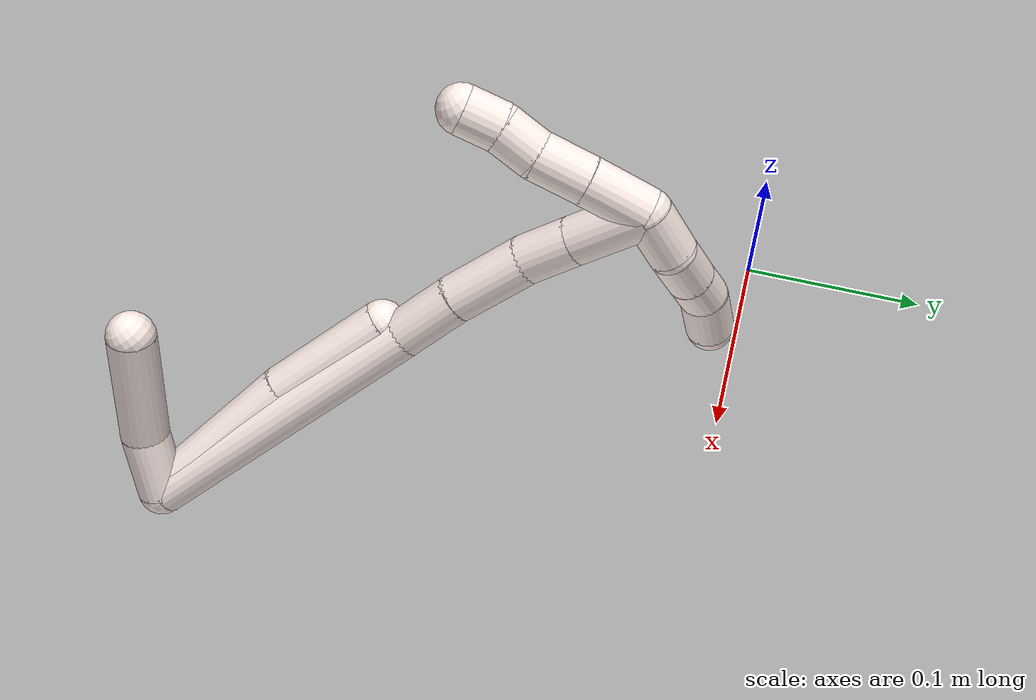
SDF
<sdf version="1.7">
 <world name="default">
  <model name="11">
   <static>0</static>
   <link name="11">
    <collision name="collision-cylinder-e_1_2_8">
     <pose>-0.02096 0.036794 0.006139 -1.40548 -0.511923 0.436262</pose>
     <geometry><cylinder><radius>0.0125</radius><length>0.085576</length></cylinder></geometry>
     <surface>
      <friction><ode><mu>1.16</mu><mu2>1.16</mu2><slip1>0</slip1><slip2>0</slip2></ode></friction>
      <contact><ode><kp>1e+06</kp><kd>1</kd><max_vel>0</max_vel><min_depth>0.001</min_depth></ode></contact>
     </surface>
    </collision>
    <visual name="visual-cylinder-e_1_2_8">
     <pose>-0.02096 0.036794 0.006139 -1.40548 -0.511923 0.436262</pose>
     <geometry><cylinder><radius>0.0125</radius><length>0.085576</length></cylinder></geometry>
     <material><ambient>1 0.933333 0.909804 1</ambient></material>
    </visual>
    <collision name="collision-cylinder-e_2_8_6">
     <pose>-0.055181 0.102883 0.014168 -1.50632 -0.424317 0.398523</pose>
     <geometry><cylinder><radius>0.0125</radius><length>0.064424</length></cylinder></geometry>
     <surface>
      <friction><ode><mu>1.16</mu><mu2>1.16</mu2><slip1>0</slip1><slip2>0</slip2></ode></friction>
      <contact><ode><kp>1e+06</kp><kd>1</kd><max_vel>0</max_vel><min_depth>0.001</min_depth></ode></contact>
     </surface>
    </collision>
    <visual name="visual-cylinder-e_2_8_6">
     <pose>-0.055181 0.102883 0.014168 -1.50632 -0.424317 0.398523</pose>
     <geometry><cylinder><radius>0.0125</radius><length>0.064424</length></cylinder></geometry>
     <material><ambient>1 0.933333 0.909804 1</ambient></material>
    </visual>
    <collision name="collision-cylinder-e_1_2_9">
     <pose>-0.003762 0.005771 0.016237 -0.341509 -0.214938 0.037202</pose>
     <geometry><cylinder><radius>0.0125</radius><length>0.035275</length></cylinder></geometry>
     <surface>
      <friction><ode><mu>1.16</mu><mu2>1.16</mu2><slip1>0</slip1><slip2>0</slip2></ode></friction>
      <contact><ode><kp>1e+06</kp><kd>1</kd><max_vel>0</max_vel><min_depth>0.001</min_depth></ode></contact>
     </surface>
    </collision>
    <visual name="visual-cylinder-e_1_2_9">
     <pose>-0.003762 0.005771 0.016237 -0.341509 -0.214938 0.037202</pose>
     <geometry><cylinder><radius>0.0125</radius><length>0.035275</length></cylinder></geometry>
     <material><ambient>1 0.933333 0.909804 1</ambient></material>
    </visual>
    <collision name="collision-cylinder-e_2_9_5">
     <pose>-0.010501 0.029324 0.059348 -0.584539 -0.092136 0.02774</pose>
     <geometry><cylinder><radius>0.0125</radius><length>0.064725</length></cylinder></geometry>
     <surface>
      <friction><ode><mu>1.16</mu><mu2>1.16</mu2><slip1>0</slip1><slip2>0</slip2></ode></friction>
      <contact><ode><kp>1e+06</kp><kd>1</kd><max_vel>0</max_vel><min_depth>0.001</min_depth></ode></contact>
     </surface>
    </collision>
    <visual name="visual-cylinder-e_2_9_5">
     <pose>-0.010501 0.029324 0.059348 -0.584539 -0.092136 0.02774</pose>
     <geometry><cylinder><radius>0.0125</radius><length>0.064725</length></cylinder></geometry>
     <material><ambient>1 0.933333 0.909804 1</ambient></material>
    </visual>
    <collision name="collision-cylinder-e_1_2_10">
     <pose>-0.033341 0.070015 0.003961 -1.51429 -0.443812 0.420147</pose>
     <geometry><cylinder><radius>0.0125</radius><length>0.155298</length></cylinder></geometry>
     <surface>
      <friction><ode><mu>1.16</mu><mu2>1.16</mu2><slip1>0</slip1><slip2>0</slip2></ode></friction>
      <contact><ode><kp>1e+06</kp><kd>1</kd><max_vel>0</max_vel><min_depth>0.001</min_depth></ode></contact>
     </surface>
    </collision>
    <visual name="visual-cylinder-e_1_2_10">
     <pose>-0.033341 0.070015 0.003961 -1.51429 -0.443812 0.420147</pose>
     <geometry><cylinder><radius>0.0125</radius><length>0.155298</length></cylinder></geometry>
     <material><ambient>1 0.933333 0.909804 1</ambient></material>
    </visual>
    <collision name="collision-cylinder-e_2_10_11">
     <pose>-0.07197 0.15655 0.010107 -1.43929 -0.307225 0.269755</pose>
     <geometry><cylinder><radius>0.0125</radius><length>0.034966</length></cylinder></geometry>
     <surface>
      <friction><ode><mu>1.16</mu><mu2>1.16</mu2><slip1>0</slip1><slip2>0</slip2></ode></friction>
      <contact><ode><kp>1e+06</kp><kd>1</kd><max_vel>0</max_vel><min_depth>0.001</min_depth></ode></contact>
     </surface>
    </collision>
    <visual name="visual-cylinder-e_2_10_11">
     <pose>-0.07197 0.15655 0.010107 -1.43929 -0.307225 0.269755</pose>
     <geometry><cylinder><radius>0.0125</radius><length>0.034966</length></cylinder></geometry>
     <material><ambient>1 0.933333 0.909804 1</ambient></material>
    </visual>
    <collision name="collision-cylinder-e_3_11_12">
     <pose>-0.08352 0.192971 0.013221 -1.52414 -0.304598 0.290907</pose>
     <geometry><cylinder><radius>0.0125</radius><length>0.041767</length></cylinder></geometry>
     <surface>
      <friction><ode><mu>1.16</mu><mu2>1.16</mu2><slip1>0</slip1><slip2>0</slip2></ode></friction>
      <contact><ode><kp>1e+06</kp><kd>1</kd><max_vel>0</max_vel><min_depth>0.001</min_depth></ode></contact>
     </surface>
    </collision>
    <visual name="visual-cylinder-e_3_11_12">
     <pose>-0.08352 0.192971 0.013221 -1.52414 -0.304598 0.290907</pose>
     <geometry><cylinder><radius>0.0125</radius><length>0.041767</length></cylinder></geometry>
     <material><ambient>1 0.933333 0.909804 1</ambient></material>
    </visual>
    <collision name="collision-cylinder-e_4_12_13">
     <pose>-0.092022 0.2266 0.013905 -1.58862 -0.161618 0.164512</pose>
     <geometry><cylinder><radius>0.0125</radius><length>0.027824</length></cylinder></geometry>
     <surface>
      <friction><ode><mu>1.16</mu><mu2>1.16</mu2><slip1>0</slip1><slip2>0</slip2></ode></friction>
      <contact><ode><kp>1e+06</kp><kd>1</kd><max_vel>0</max_vel><min_depth>0.001</min_depth></ode></contact>
     </surface>
    </collision>
    <visual name="visual-cylinder-e_4_12_13">
     <pose>-0.092022 0.2266 0.013905 -1.58862 -0.161618 0.164512</pose>
     <geometry><cylinder><radius>0.0125</radius><length>0.027824</length></cylinder></geometry>
     <material><ambient>1 0.933333 0.909804 1</ambient></material>
    </visual>
    <collision name="collision-cylinder-e_5_13_1">
     <pose>-0.097059 0.260202 0.013311 -1.58839 -0.139847 0.142321</pose>
     <geometry><cylinder><radius>0.0125</radius><length>0.040145</length></cylinder></geometry>
     <surface>
      <friction><ode><mu>1.16</mu><mu2>1.16</mu2><slip1>0</slip1><slip2>0</slip2></ode></friction>
      <contact><ode><kp>1e+06</kp><kd>1</kd><max_vel>0</max_vel><min_depth>0.001</min_depth></ode></contact>
     </surface>
    </collision>
    <visual name="visual-cylinder-e_5_13_1">
     <pose>-0.097059 0.260202 0.013311 -1.58839 -0.139847 0.142321</pose>
     <geometry><cylinder><radius>0.0125</radius><length>0.040145</length></cylinder></geometry>
     <material><ambient>1 0.933333 0.909804 1</ambient></material>
    </visual>
    <collision name="collision-cylinder-e_1_1_14">
     <pose>-0.099186 0.271567 0.026666 0.55557 0.041552 0.01185</pose>
     <geometry><cylinder><radius>0.0125</radius><length>0.03229</length></cylinder></geometry>
     <surface>
      <friction><ode><mu>1.16</mu><mu2>1.16</mu2><slip1>0</slip1><slip2>0</slip2></ode></friction>
      <contact><ode><kp>1e+06</kp><kd>1</kd><max_vel>0</max_vel><min_depth>0.001</min_depth></ode></contact>
     </surface>
    </collision>
    <visual name="visual-cylinder-e_1_1_14">
     <pose>-0.099186 0.271567 0.026666 0.55557 0.041552 0.01185</pose>
     <geometry><cylinder><radius>0.0125</radius><length>0.03229</length></cylinder></geometry>
     <material><ambient>1 0.933333 0.909804 1</ambient></material>
    </visual>
    <collision name="collision-cylinder-e_2_14_15">
     <pose>-0.097938 0.255573 0.051556 0.589843 0.042858 0.013021</pose>
     <geometry><cylinder><radius>0.0125</radius><length>0.026943</length></cylinder></geometry>
     <surface>
      <friction><ode><mu>1.16</mu><mu2>1.16</mu2><slip1>0</slip1><slip2>0</slip2></ode></friction>
      <contact><ode><kp>1e+06</kp><kd>1</kd><max_vel>0</max_vel><min_depth>0.001</min_depth></ode></contact>
     </surface>
    </collision>
    <visual name="visual-cylinder-e_2_14_15">
     <pose>-0.097938 0.255573 0.051556 0.589843 0.042858 0.013021</pose>
     <geometry><cylinder><radius>0.0125</radius><length>0.026943</length></cylinder></geometry>
     <material><ambient>1 0.933333 0.909804 1</ambient></material>
    </visual>
    <collision name="collision-cylinder-e_3_15_16">
     <pose>-0.09795 0.243882 0.072161 0.419745 -0.057059 -0.012157</pose>
     <geometry><cylinder><radius>0.0125</radius><length>0.020666</length></cylinder></geometry>
     <surface>
      <friction><ode><mu>1.16</mu><mu2>1.16</mu2><slip1>0</slip1><slip2>0</slip2></ode></friction>
      <contact><ode><kp>1e+06</kp><kd>1</kd><max_vel>0</max_vel><min_depth>0.001</min_depth></ode></contact>
     </surface>
    </collision>
    <visual name="visual-cylinder-e_3_15_16">
     <pose>-0.09795 0.243882 0.072161 0.419745 -0.057059 -0.012157</pose>
     <geometry><cylinder><radius>0.0125</radius><length>0.020666</length></cylinder></geometry>
     <material><ambient>1 0.933333 0.909804 1</ambient></material>
    </visual>
    <collision name="collision-cylinder-e_4_16_4">
     <pose>-0.097549 0.234168 0.089929 0.583442 0.098705 0.029662</pose>
     <geometry><cylinder><radius>0.0125</radius><length>0.020102</length></cylinder></geometry>
     <surface>
      <friction><ode><mu>1.16</mu><mu2>1.16</mu2><slip1>0</slip1><slip2>0</slip2></ode></friction>
      <contact><ode><kp>1e+06</kp><kd>1</kd><max_vel>0</max_vel><min_depth>0.001</min_depth></ode></contact>
     </surface>
    </collision>
    <visual name="visual-cylinder-e_4_16_4">
     <pose>-0.097549 0.234168 0.089929 0.583442 0.098705 0.029662</pose>
     <geometry><cylinder><radius>0.0125</radius><length>0.020102</length></cylinder></geometry>
     <material><ambient>1 0.933333 0.909804 1</ambient></material>
    </visual>
    <collision name="collision-cylinder-e_1_1_17">
     <pose>-0.101191 0.279056 -0.000608 3.06663 -0.097776 -1.83373</pose>
     <geometry><cylinder><radius>0.0125</radius><length>0.027345</length></cylinder></geometry>
     <surface>
      <friction><ode><mu>1.16</mu><mu2>1.16</mu2><slip1>0</slip1><slip2>0</slip2></ode></friction>
      <contact><ode><kp>1e+06</kp><kd>1</kd><max_vel>0</max_vel><min_depth>0.001</min_depth></ode></contact>
     </surface>
    </collision>
    <visual name="visual-cylinder-e_1_1_17">
     <pose>-0.101191 0.279056 -0.000608 3.06663 -0.097776 -1.83373</pose>
     <geometry><cylinder><radius>0.0125</radius><length>0.027345</length></cylinder></geometry>
     <material><ambient>1 0.933333 0.909804 1</ambient></material>
    </visual>
    <collision name="collision-cylinder-e_2_17_18">
     <pose>-0.10708 0.275456 -0.025549 2.91846 -0.372265 -2.06824</pose>
     <geometry><cylinder><radius>0.0125</radius><length>0.025038</length></cylinder></geometry>
     <surface>
      <friction><ode><mu>1.16</mu><mu2>1.16</mu2><slip1>0</slip1><slip2>0</slip2></ode></friction>
      <contact><ode><kp>1e+06</kp><kd>1</kd><max_vel>0</max_vel><min_depth>0.001</min_depth></ode></contact>
     </surface>
    </collision>
    <visual name="visual-cylinder-e_2_17_18">
     <pose>-0.10708 0.275456 -0.025549 2.91846 -0.372265 -2.06824</pose>
     <geometry><cylinder><radius>0.0125</radius><length>0.025038</length></cylinder></geometry>
     <material><ambient>1 0.933333 0.909804 1</ambient></material>
    </visual>
    <collision name="collision-cylinder-e_3_18_19">
     <pose>-0.115586 0.270822 -0.046077 2.92096 -0.398731 -2.13865</pose>
     <geometry><cylinder><radius>0.0125</radius><length>0.020363</length></cylinder></geometry>
     <surface>
      <friction><ode><mu>1.16</mu><mu2>1.16</mu2><slip1>0</slip1><slip2>0</slip2></ode></friction>
      <contact><ode><kp>1e+06</kp><kd>1</kd><max_vel>0</max_vel><min_depth>0.001</min_depth></ode></contact>
     </surface>
    </collision>
    <visual name="visual-cylinder-e_3_18_19">
     <pose>-0.115586 0.270822 -0.046077 2.92096 -0.398731 -2.13865</pose>
     <geometry><cylinder><radius>0.0125</radius><length>0.020363</length></cylinder></geometry>
     <material><ambient>1 0.933333 0.909804 1</ambient></material>
    </visual>
    <collision name="collision-cylinder-e_4_19_3">
     <pose>-0.122571 0.263228 -0.067307 2.71135 -0.224361 -0.952049</pose>
     <geometry><cylinder><radius>0.0125</radius><length>0.027253</length></cylinder></geometry>
     <surface>
      <friction><ode><mu>1.16</mu><mu2>1.16</mu2><slip1>0</slip1><slip2>0</slip2></ode></friction>
      <contact><ode><kp>1e+06</kp><kd>1</kd><max_vel>0</max_vel><min_depth>0.001</min_depth></ode></contact>
     </surface>
    </collision>
    <visual name="visual-cylinder-e_4_19_3">
     <pose>-0.122571 0.263228 -0.067307 2.71135 -0.224361 -0.952049</pose>
     <geometry><cylinder><radius>0.0125</radius><length>0.027253</length></cylinder></geometry>
     <material><ambient>1 0.933333 0.909804 1</ambient></material>
    </visual>
    <collision name="collision-sphere-3">
     <pose>-0.125603 0.257687 -0.079382 0 -0 0</pose>
     <geometry><sphere><radius>0.0125</radius></sphere></geometry>
     <surface>
      <friction><ode><mu>1.16</mu><mu2>1.16</mu2><slip1>0</slip1><slip2>0</slip2></ode></friction>
      <contact><ode><kp>1e+06</kp><kd>1</kd><max_vel>0</max_vel><min_depth>0.001</min_depth></ode></contact>
     </surface>
    </collision>
    <visual name="visual-sphere-3">
     <pose>-0.125603 0.257687 -0.079382 0 -0 0</pose>
     <geometry><sphere><radius>0.0125</radius></sphere></geometry>
     <material><ambient>1 0.933333 0.909804 1</ambient></material>
    </visual>
    <collision name="collision-sphere-19">
     <pose>-0.119539 0.268769 -0.055233 0 -0 0</pose>
     <geometry><sphere><radius>0.0125</radius></sphere></geometry>
     <surface>
      <friction><ode><mu>1.16</mu><mu2>1.16</mu2><slip1>0</slip1><slip2>0</slip2></ode></friction>
      <contact><ode><kp>1e+06</kp><kd>1</kd><max_vel>0</max_vel><min_depth>0.001</min_depth></ode></contact>
     </surface>
    </collision>
    <visual name="visual-sphere-19">
     <pose>-0.119539 0.268769 -0.055233 0 -0 0</pose>
     <geometry><sphere><radius>0.0125</radius></sphere></geometry>
     <material><ambient>1 0.933333 0.909804 1</ambient></material>
    </visual>
    <collision name="collision-sphere-10">
     <pose>-0.066683 0.140029 0.007921 0 -0 0</pose>
     <geometry><sphere><radius>0.0125</radius></sphere></geometry>
     <surface>
      <friction><ode><mu>1.16</mu><mu2>1.16</mu2><slip1>0</slip1><slip2>0</slip2></ode></friction>
      <contact><ode><kp>1e+06</kp><kd>1</kd><max_vel>0</max_vel><min_depth>0.001</min_depth></ode></contact>
     </surface>
    </collision>
    <visual name="visual-sphere-10">
     <pose>-0.066683 0.140029 0.007921 0 -0 0</pose>
     <geometry><sphere><radius>0.0125</radius></sphere></geometry>
     <material><ambient>1 0.933333 0.909804 1</ambient></material>
    </visual>
    <collision name="collision-sphere-5">
     <pose>-0.013479 0.047107 0.086223 0 -0 0</pose>
     <geometry><sphere><radius>0.0125</radius></sphere></geometry>
     <surface>
      <friction><ode><mu>1.16</mu><mu2>1.16</mu2><slip1>0</slip1><slip2>0</slip2></ode></friction>
      <contact><ode><kp>1e+06</kp><kd>1</kd><max_vel>0</max_vel><min_depth>0.001</min_depth></ode></contact>
     </surface>
    </collision>
    <visual name="visual-sphere-5">
     <pose>-0.013479 0.047107 0.086223 0 -0 0</pose>
     <geometry><sphere><radius>0.0125</radius></sphere></geometry>
     <material><ambient>1 0.933333 0.909804 1</ambient></material>
    </visual>
    <collision name="collision-sphere-6">
     <pose>-0.068443 0.132177 0.01606 0 -0 0</pose>
     <geometry><sphere><radius>0.0125</radius></sphere></geometry>
     <surface>
      <friction><ode><mu>1.16</mu><mu2>1.16</mu2><slip1>0</slip1><slip2>0</slip2></ode></friction>
      <contact><ode><kp>1e+06</kp><kd>1</kd><max_vel>0</max_vel><min_depth>0.001</min_depth></ode></contact>
     </surface>
    </collision>
    <visual name="visual-sphere-6">
     <pose>-0.068443 0.132177 0.01606 0 -0 0</pose>
     <geometry><sphere><radius>0.0125</radius></sphere></geometry>
     <material><ambient>1 0.933333 0.909804 1</ambient></material>
    </visual>
    <collision name="collision-sphere-9">
     <pose>-0.007524 0.011542 0.032473 0 -0 0</pose>
     <geometry><sphere><radius>0.0125</radius></sphere></geometry>
     <surface>
      <friction><ode><mu>1.16</mu><mu2>1.16</mu2><slip1>0</slip1><slip2>0</slip2></ode></friction>
      <contact><ode><kp>1e+06</kp><kd>1</kd><max_vel>0</max_vel><min_depth>0.001</min_depth></ode></contact>
     </surface>
    </collision>
    <visual name="visual-sphere-9">
     <pose>-0.007524 0.011542 0.032473 0 -0 0</pose>
     <geometry><sphere><radius>0.0125</radius></sphere></geometry>
     <material><ambient>1 0.933333 0.909804 1</ambient></material>
    </visual>
    <collision name="collision-sphere-2">
     <geometry><sphere><radius>0.0125</radius></sphere></geometry>
     <surface>
      <friction><ode><mu>1.16</mu><mu2>1.16</mu2><slip1>0</slip1><slip2>0</slip2></ode></friction>
      <contact><ode><kp>1e+06</kp><kd>1</kd><max_vel>0</max_vel><min_depth>0.001</min_depth></ode></contact>
     </surface>
    </collision>
    <visual name="visual-sphere-2">
     <geometry><sphere><radius>0.0125</radius></sphere></geometry>
     <material><ambient>1 0.933333 0.909804 1</ambient></material>
    </visual>
    <collision name="collision-sphere-8">
     <pose>-0.04192 0.073588 0.012277 0 -0 0</pose>
     <geometry><sphere><radius>0.0125</radius></sphere></geometry>
     <surface>
      <friction><ode><mu>1.16</mu><mu2>1.16</mu2><slip1>0</slip1><slip2>0</slip2></ode></friction>
      <contact><ode><kp>1e+06</kp><kd>1</kd><max_vel>0</max_vel><min_depth>0.001</min_depth></ode></contact>
     </surface>
    </collision>
    <visual name="visual-sphere-8">
     <pose>-0.04192 0.073588 0.012277 0 -0 0</pose>
     <geometry><sphere><radius>0.0125</radius></sphere></geometry>
     <material><ambient>1 0.933333 0.909804 1</ambient></material>
    </visual>
    <collision name="collision-sphere-11">
     <pose>-0.077257 0.17307 0.012292 0 -0 0</pose>
     <geometry><sphere><radius>0.0125</radius></sphere></geometry>
     <surface>
      <friction><ode><mu>1.16</mu><mu2>1.16</mu2><slip1>0</slip1><slip2>0</slip2></ode></friction>
      <contact><ode><kp>1e+06</kp><kd>1</kd><max_vel>0</max_vel><min_depth>0.001</min_depth></ode></contact>
     </surface>
    </collision>
    <visual name="visual-sphere-11">
     <pose>-0.077257 0.17307 0.012292 0 -0 0</pose>
     <geometry><sphere><radius>0.0125</radius></sphere></geometry>
     <material><ambient>1 0.933333 0.909804 1</ambient></material>
    </visual>
    <collision name="collision-sphere-12">
     <pose>-0.089784 0.212872 0.01415 0 -0 0</pose>
     <geometry><sphere><radius>0.0125</radius></sphere></geometry>
     <surface>
      <friction><ode><mu>1.16</mu><mu2>1.16</mu2><slip1>0</slip1><slip2>0</slip2></ode></friction>
      <contact><ode><kp>1e+06</kp><kd>1</kd><max_vel>0</max_vel><min_depth>0.001</min_depth></ode></contact>
     </surface>
    </collision>
    <visual name="visual-sphere-12">
     <pose>-0.089784 0.212872 0.01415 0 -0 0</pose>
     <geometry><sphere><radius>0.0125</radius></sphere></geometry>
     <material><ambient>1 0.933333 0.909804 1</ambient></material>
    </visual>
    <collision name="collision-sphere-13">
     <pose>-0.094261 0.240328 0.013661 0 -0 0</pose>
     <geometry><sphere><radius>0.0125</radius></sphere></geometry>
     <surface>
      <friction><ode><mu>1.16</mu><mu2>1.16</mu2><slip1>0</slip1><slip2>0</slip2></ode></friction>
      <contact><ode><kp>1e+06</kp><kd>1</kd><max_vel>0</max_vel><min_depth>0.001</min_depth></ode></contact>
     </surface>
    </collision>
    <visual name="visual-sphere-13">
     <pose>-0.094261 0.240328 0.013661 0 -0 0</pose>
     <geometry><sphere><radius>0.0125</radius></sphere></geometry>
     <material><ambient>1 0.933333 0.909804 1</ambient></material>
    </visual>
    <collision name="collision-sphere-1">
     <pose>-0.099857 0.280075 0.012961 0 -0 0</pose>
     <geometry><sphere><radius>0.0125</radius></sphere></geometry>
     <surface>
      <friction><ode><mu>1.16</mu><mu2>1.16</mu2><slip1>0</slip1><slip2>0</slip2></ode></friction>
      <contact><ode><kp>1e+06</kp><kd>1</kd><max_vel>0</max_vel><min_depth>0.001</min_depth></ode></contact>
     </surface>
    </collision>
    <visual name="visual-sphere-1">
     <pose>-0.099857 0.280075 0.012961 0 -0 0</pose>
     <geometry><sphere><radius>0.0125</radius></sphere></geometry>
     <material><ambient>1 0.933333 0.909804 1</ambient></material>
    </visual>
    <collision name="collision-sphere-18">
     <pose>-0.111633 0.272876 -0.036922 0 -0 0</pose>
     <geometry><sphere><radius>0.0125</radius></sphere></geometry>
     <surface>
      <friction><ode><mu>1.16</mu><mu2>1.16</mu2><slip1>0</slip1><slip2>0</slip2></ode></friction>
      <contact><ode><kp>1e+06</kp><kd>1</kd><max_vel>0</max_vel><min_depth>0.001</min_depth></ode></contact>
     </surface>
    </collision>
    <visual name="visual-sphere-18">
     <pose>-0.111633 0.272876 -0.036922 0 -0 0</pose>
     <geometry><sphere><radius>0.0125</radius></sphere></geometry>
     <material><ambient>1 0.933333 0.909804 1</ambient></material>
    </visual>
    <collision name="collision-sphere-14">
     <pose>-0.098515 0.263059 0.040371 0 -0 0</pose>
     <geometry><sphere><radius>0.0125</radius></sphere></geometry>
     <surface>
      <friction><ode><mu>1.16</mu><mu2>1.16</mu2><slip1>0</slip1><slip2>0</slip2></ode></friction>
      <contact><ode><kp>1e+06</kp><kd>1</kd><max_vel>0</max_vel><min_depth>0.001</min_depth></ode></contact>
     </surface>
    </collision>
    <visual name="visual-sphere-14">
     <pose>-0.098515 0.263059 0.040371 0 -0 0</pose>
     <geometry><sphere><radius>0.0125</radius></sphere></geometry>
     <material><ambient>1 0.933333 0.909804 1</ambient></material>
    </visual>
    <collision name="collision-sphere-15">
     <pose>-0.097361 0.248086 0.062741 0 -0 0</pose>
     <geometry><sphere><radius>0.0125</radius></sphere></geometry>
     <surface>
      <friction><ode><mu>1.16</mu><mu2>1.16</mu2><slip1>0</slip1><slip2>0</slip2></ode></friction>
      <contact><ode><kp>1e+06</kp><kd>1</kd><max_vel>0</max_vel><min_depth>0.001</min_depth></ode></contact>
     </surface>
    </collision>
    <visual name="visual-sphere-15">
     <pose>-0.097361 0.248086 0.062741 0 -0 0</pose>
     <geometry><sphere><radius>0.0125</radius></sphere></geometry>
     <material><ambient>1 0.933333 0.909804 1</ambient></material>
    </visual>
    <collision name="collision-sphere-16">
     <pose>-0.098539 0.239678 0.081582 0 -0 0</pose>
     <geometry><sphere><radius>0.0125</radius></sphere></geometry>
     <surface>
      <friction><ode><mu>1.16</mu><mu2>1.16</mu2><slip1>0</slip1><slip2>0</slip2></ode></friction>
      <contact><ode><kp>1e+06</kp><kd>1</kd><max_vel>0</max_vel><min_depth>0.001</min_depth></ode></contact>
     </surface>
    </collision>
    <visual name="visual-sphere-16">
     <pose>-0.098539 0.239678 0.081582 0 -0 0</pose>
     <geometry><sphere><radius>0.0125</radius></sphere></geometry>
     <material><ambient>1 0.933333 0.909804 1</ambient></material>
    </visual>
    <collision name="collision-sphere-4">
     <pose>-0.096559 0.228658 0.098276 0 -0 0</pose>
     <geometry><sphere><radius>0.0125</radius></sphere></geometry>
     <surface>
      <friction><ode><mu>1.16</mu><mu2>1.16</mu2><slip1>0</slip1><slip2>0</slip2></ode></friction>
      <contact><ode><kp>1e+06</kp><kd>1</kd><max_vel>0</max_vel><min_depth>0.001</min_depth></ode></contact>
     </surface>
    </collision>
    <visual name="visual-sphere-4">
     <pose>-0.096559 0.228658 0.098276 0 -0 0</pose>
     <geometry><sphere><radius>0.0125</radius></sphere></geometry>
     <material><ambient>1 0.933333 0.909804 1</ambient></material>
    </visual>
    <collision name="collision-sphere-17">
     <pose>-0.102526 0.278037 -0.014176 0 -0 0</pose>
     <geometry><sphere><radius>0.0125</radius></sphere></geometry>
     <surface>
      <friction><ode><mu>1.16</mu><mu2>1.16</mu2><slip1>0</slip1><slip2>0</slip2></ode></friction>
      <contact><ode><kp>1e+06</kp><kd>1</kd><max_vel>0</max_vel><min_depth>0.001</min_depth></ode></contact>
     </surface>
    </collision>
    <visual name="visual-sphere-17">
     <pose>-0.102526 0.278037 -0.014176 0 -0 0</pose>
     <geometry><sphere><radius>0.0125</radius></sphere></geometry>
     <material><ambient>1 0.933333 0.909804 1</ambient></material>
    </visual>
    <inertial>
     <pose>-0.059693 0.140872 0.013886 0 -0 0</pose>
     <mass>0.75</mass>
     <inertia>
      <ixx>0.000515</ixx>
      <ixy>0</ixy>
      <ixz>0</ixz>
      <iyy>0.000309</iyy>
      <iyz>0</iyz>
      <izz>-0.000194</izz>
     </inertia>
    </inertial>
   </link>
   <pose>0.224871 -0.27472 0.049115 0.658619 -0.331294 -0.060853</pose>
  </model>
 </world>
</sdf>
